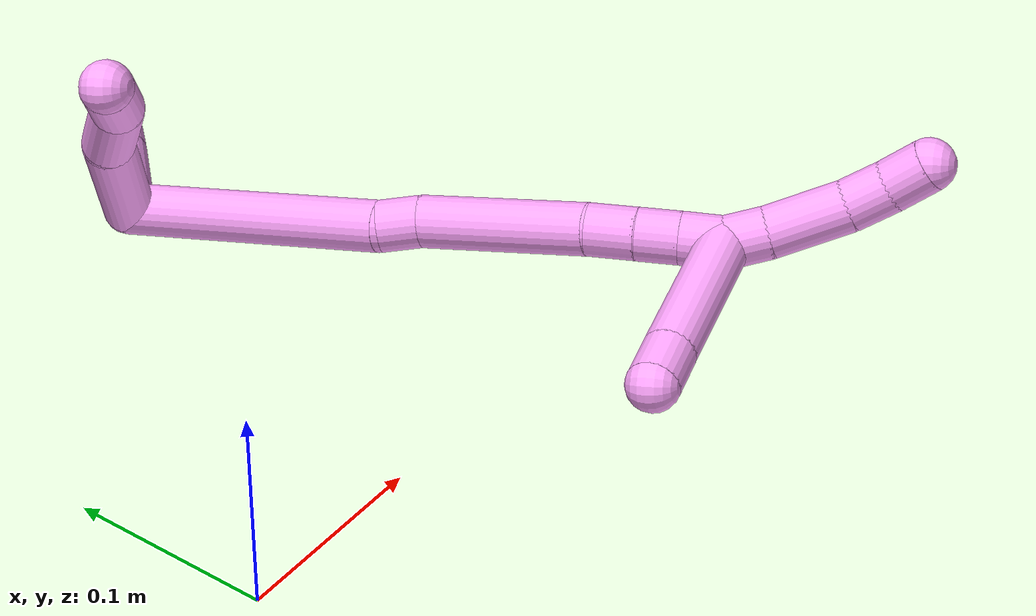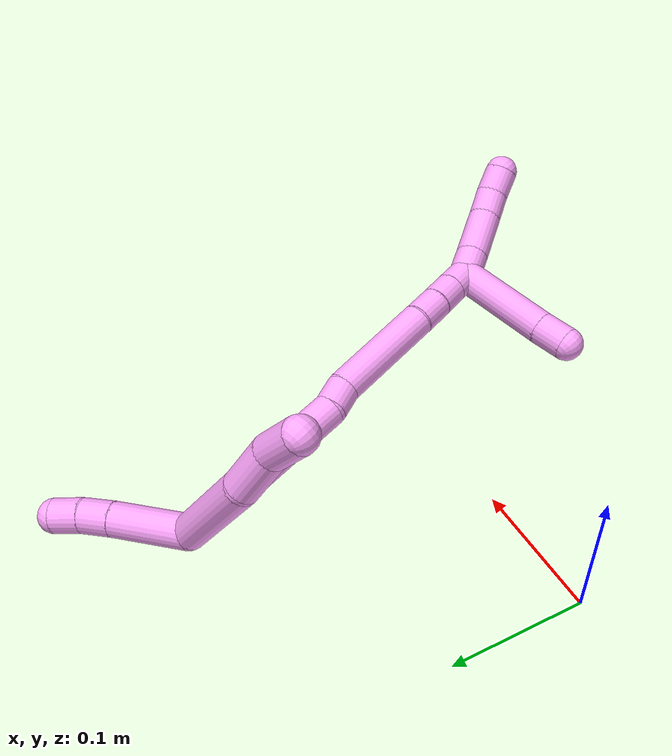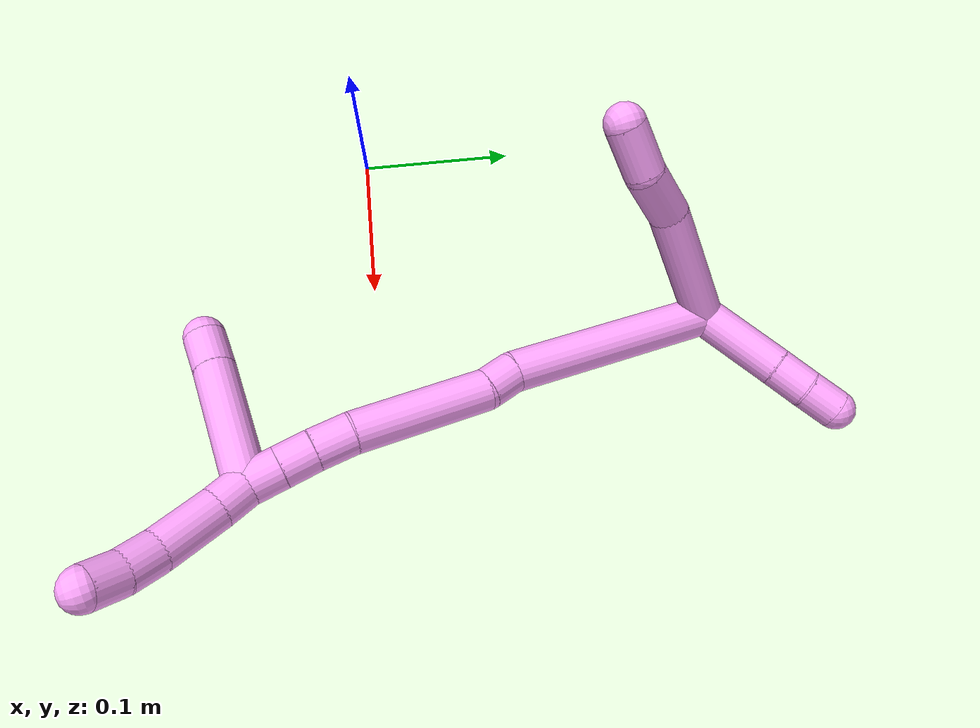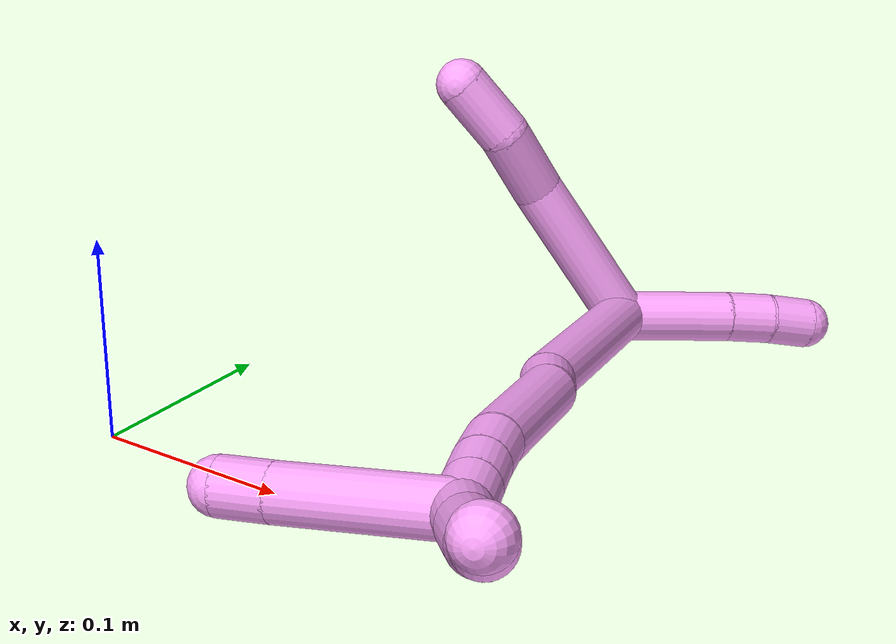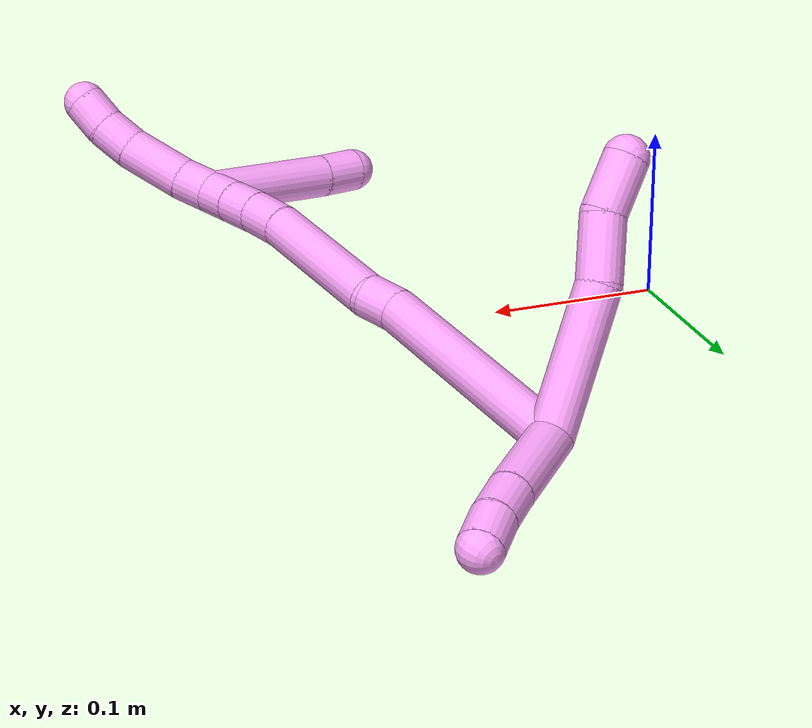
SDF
<sdf version="1.7">
 <world name="default">
  <model name="4">
   <static>0</static>
   <link name="4">
    <collision name="collision-cylinder-e_1_2_8">
     <pose>-0.004478 0.0389 -0.011441 -1.85685 -0.109999 0.146895</pose>
     <geometry><cylinder><radius>0.0125</radius><length>0.081588</length></cylinder></geometry>
     <surface>
      <friction><ode><mu>1.16</mu><mu2>1.16</mu2><slip1>0</slip1><slip2>0</slip2></ode></friction>
      <contact><ode><kp>1e+06</kp><kd>1</kd><max_vel>0</max_vel><min_depth>0.001</min_depth></ode></contact>
     </surface>
    </collision>
    <visual name="visual-cylinder-e_1_2_8">
     <pose>-0.004478 0.0389 -0.011441 -1.85685 -0.109999 0.146895</pose>
     <geometry><cylinder><radius>0.0125</radius><length>0.081588</length></cylinder></geometry>
     <material><ambient>1 0.65098 0.996078 1</ambient></material>
    </visual>
    <collision name="collision-cylinder-e_2_8_9">
     <pose>-0.012767 0.093305 -0.03163 -2.08446 -0.210848 0.358501</pose>
     <geometry><cylinder><radius>0.0125</radius><length>0.036412</length></cylinder></geometry>
     <surface>
      <friction><ode><mu>1.16</mu><mu2>1.16</mu2><slip1>0</slip1><slip2>0</slip2></ode></friction>
      <contact><ode><kp>1e+06</kp><kd>1</kd><max_vel>0</max_vel><min_depth>0.001</min_depth></ode></contact>
     </surface>
    </collision>
    <visual name="visual-cylinder-e_2_8_9">
     <pose>-0.012767 0.093305 -0.03163 -2.08446 -0.210848 0.358501</pose>
     <geometry><cylinder><radius>0.0125</radius><length>0.036412</length></cylinder></geometry>
     <material><ambient>1 0.65098 0.996078 1</ambient></material>
    </visual>
    <collision name="collision-cylinder-e_3_9_6">
     <pose>-0.016442 0.124209 -0.044721 -1.84565 0.008445 -0.011156</pose>
     <geometry><cylinder><radius>0.0125</radius><length>0.032</length></cylinder></geometry>
     <surface>
      <friction><ode><mu>1.16</mu><mu2>1.16</mu2><slip1>0</slip1><slip2>0</slip2></ode></friction>
      <contact><ode><kp>1e+06</kp><kd>1</kd><max_vel>0</max_vel><min_depth>0.001</min_depth></ode></contact>
     </surface>
    </collision>
    <visual name="visual-cylinder-e_3_9_6">
     <pose>-0.016442 0.124209 -0.044721 -1.84565 0.008445 -0.011156</pose>
     <geometry><cylinder><radius>0.0125</radius><length>0.032</length></cylinder></geometry>
     <material><ambient>1 0.65098 0.996078 1</ambient></material>
    </visual>
    <collision name="collision-cylinder-e_1_2_10">
     <pose>-0.018797 -0.016003 0.012612 0.903339 -0.745109 -0.374724</pose>
     <geometry><cylinder><radius>0.0125</radius><length>0.055443</length></cylinder></geometry>
     <surface>
      <friction><ode><mu>1.16</mu><mu2>1.16</mu2><slip1>0</slip1><slip2>0</slip2></ode></friction>
      <contact><ode><kp>1e+06</kp><kd>1</kd><max_vel>0</max_vel><min_depth>0.001</min_depth></ode></contact>
     </surface>
    </collision>
    <visual name="visual-cylinder-e_1_2_10">
     <pose>-0.018797 -0.016003 0.012612 0.903339 -0.745109 -0.374724</pose>
     <geometry><cylinder><radius>0.0125</radius><length>0.055443</length></cylinder></geometry>
     <material><ambient>1 0.65098 0.996078 1</ambient></material>
    </visual>
    <collision name="collision-cylinder-e_2_10_11">
     <pose>-0.044797 -0.038874 0.030624 0.904494 -0.689591 -0.345485</pose>
     <geometry><cylinder><radius>0.0125</radius><length>0.022647</length></cylinder></geometry>
     <surface>
      <friction><ode><mu>1.16</mu><mu2>1.16</mu2><slip1>0</slip1><slip2>0</slip2></ode></friction>
      <contact><ode><kp>1e+06</kp><kd>1</kd><max_vel>0</max_vel><min_depth>0.001</min_depth></ode></contact>
     </surface>
    </collision>
    <visual name="visual-cylinder-e_2_10_11">
     <pose>-0.044797 -0.038874 0.030624 0.904494 -0.689591 -0.345485</pose>
     <geometry><cylinder><radius>0.0125</radius><length>0.022647</length></cylinder></geometry>
     <material><ambient>1 0.65098 0.996078 1</ambient></material>
    </visual>
    <collision name="collision-cylinder-e_3_11_5">
     <pose>-0.057991 -0.052744 0.041949 0.868564 -0.578421 -0.274286</pose>
     <geometry><cylinder><radius>0.0125</radius><length>0.02191</length></cylinder></geometry>
     <surface>
      <friction><ode><mu>1.16</mu><mu2>1.16</mu2><slip1>0</slip1><slip2>0</slip2></ode></friction>
      <contact><ode><kp>1e+06</kp><kd>1</kd><max_vel>0</max_vel><min_depth>0.001</min_depth></ode></contact>
     </surface>
    </collision>
    <visual name="visual-cylinder-e_3_11_5">
     <pose>-0.057991 -0.052744 0.041949 0.868564 -0.578421 -0.274286</pose>
     <geometry><cylinder><radius>0.0125</radius><length>0.02191</length></cylinder></geometry>
     <material><ambient>1 0.65098 0.996078 1</ambient></material>
    </visual>
    <collision name="collision-cylinder-e_1_2_12">
     <pose>0.00208 0.003013 -0.066724 -3.09647 0.031125 -1.20753</pose>
     <geometry><cylinder><radius>0.0125</radius><length>0.133649</length></cylinder></geometry>
     <surface>
      <friction><ode><mu>1.16</mu><mu2>1.16</mu2><slip1>0</slip1><slip2>0</slip2></ode></friction>
      <contact><ode><kp>1e+06</kp><kd>1</kd><max_vel>0</max_vel><min_depth>0.001</min_depth></ode></contact>
     </surface>
    </collision>
    <visual name="visual-cylinder-e_1_2_12">
     <pose>0.00208 0.003013 -0.066724 -3.09647 0.031125 -1.20753</pose>
     <geometry><cylinder><radius>0.0125</radius><length>0.133649</length></cylinder></geometry>
     <material><ambient>1 0.65098 0.996078 1</ambient></material>
    </visual>
    <collision name="collision-cylinder-e_2_12_13">
     <pose>0.00204 0.004683 -0.143356 3.00689 -0.208846 -1.99787</pose>
     <geometry><cylinder><radius>0.0125</radius><length>0.020442</length></cylinder></geometry>
     <surface>
      <friction><ode><mu>1.16</mu><mu2>1.16</mu2><slip1>0</slip1><slip2>0</slip2></ode></friction>
      <contact><ode><kp>1e+06</kp><kd>1</kd><max_vel>0</max_vel><min_depth>0.001</min_depth></ode></contact>
     </surface>
    </collision>
    <visual name="visual-cylinder-e_2_12_13">
     <pose>0.00204 0.004683 -0.143356 3.00689 -0.208846 -1.99787</pose>
     <geometry><cylinder><radius>0.0125</radius><length>0.020442</length></cylinder></geometry>
     <material><ambient>1 0.65098 0.996078 1</ambient></material>
    </visual>
    <collision name="collision-cylinder-e_3_13_14">
     <pose>0.000264 0.004807 -0.194503 -3.10604 0.008309 -0.459171</pose>
     <geometry><cylinder><radius>0.0125</radius><length>0.082531</length></cylinder></geometry>
     <surface>
      <friction><ode><mu>1.16</mu><mu2>1.16</mu2><slip1>0</slip1><slip2>0</slip2></ode></friction>
      <contact><ode><kp>1e+06</kp><kd>1</kd><max_vel>0</max_vel><min_depth>0.001</min_depth></ode></contact>
     </surface>
    </collision>
    <visual name="visual-cylinder-e_3_13_14">
     <pose>0.000264 0.004807 -0.194503 -3.10604 0.008309 -0.459171</pose>
     <geometry><cylinder><radius>0.0125</radius><length>0.082531</length></cylinder></geometry>
     <material><ambient>1 0.65098 0.996078 1</ambient></material>
    </visual>
    <collision name="collision-cylinder-e_4_14_15">
     <pose>0.000835 0.005194 -0.247243 3.048 0.019728 0.415226</pose>
     <geometry><cylinder><radius>0.0125</radius><length>0.02311</length></cylinder></geometry>
     <surface>
      <friction><ode><mu>1.16</mu><mu2>1.16</mu2><slip1>0</slip1><slip2>0</slip2></ode></friction>
      <contact><ode><kp>1e+06</kp><kd>1</kd><max_vel>0</max_vel><min_depth>0.001</min_depth></ode></contact>
     </surface>
    </collision>
    <visual name="visual-cylinder-e_4_14_15">
     <pose>0.000835 0.005194 -0.247243 3.048 0.019728 0.415226</pose>
     <geometry><cylinder><radius>0.0125</radius><length>0.02311</length></cylinder></geometry>
     <material><ambient>1 0.65098 0.996078 1</ambient></material>
    </visual>
    <collision name="collision-cylinder-e_5_15_16">
     <pose>0.001115 0.002642 -0.268752 2.99548 0.005177 0.070714</pose>
     <geometry><cylinder><radius>0.0125</radius><length>0.02023</length></cylinder></geometry>
     <surface>
      <friction><ode><mu>1.16</mu><mu2>1.16</mu2><slip1>0</slip1><slip2>0</slip2></ode></friction>
      <contact><ode><kp>1e+06</kp><kd>1</kd><max_vel>0</max_vel><min_depth>0.001</min_depth></ode></contact>
     </surface>
    </collision>
    <visual name="visual-cylinder-e_5_15_16">
     <pose>0.001115 0.002642 -0.268752 2.99548 0.005177 0.070714</pose>
     <geometry><cylinder><radius>0.0125</radius><length>0.02023</length></cylinder></geometry>
     <material><ambient>1 0.65098 0.996078 1</ambient></material>
    </visual>
    <collision name="collision-cylinder-e_6_16_1">
     <pose>0.001375 -0.000291 -0.288669 2.99528 0.020764 0.281462</pose>
     <geometry><cylinder><radius>0.0125</radius><length>0.020039</length></cylinder></geometry>
     <surface>
      <friction><ode><mu>1.16</mu><mu2>1.16</mu2><slip1>0</slip1><slip2>0</slip2></ode></friction>
      <contact><ode><kp>1e+06</kp><kd>1</kd><max_vel>0</max_vel><min_depth>0.001</min_depth></ode></contact>
     </surface>
    </collision>
    <visual name="visual-cylinder-e_6_16_1">
     <pose>0.001375 -0.000291 -0.288669 2.99528 0.020764 0.281462</pose>
     <geometry><cylinder><radius>0.0125</radius><length>0.020039</length></cylinder></geometry>
     <material><ambient>1 0.65098 0.996078 1</ambient></material>
    </visual>
    <collision name="collision-cylinder-e_1_1_17">
     <pose>0.032881 0.020247 -0.295338 -1.42451 0.953078 -0.838604</pose>
     <geometry><cylinder><radius>0.0125</radius><length>0.076785</length></cylinder></geometry>
     <surface>
      <friction><ode><mu>1.16</mu><mu2>1.16</mu2><slip1>0</slip1><slip2>0</slip2></ode></friction>
      <contact><ode><kp>1e+06</kp><kd>1</kd><max_vel>0</max_vel><min_depth>0.001</min_depth></ode></contact>
     </surface>
    </collision>
    <visual name="visual-cylinder-e_1_1_17">
     <pose>0.032881 0.020247 -0.295338 -1.42451 0.953078 -0.838604</pose>
     <geometry><cylinder><radius>0.0125</radius><length>0.076785</length></cylinder></geometry>
     <material><ambient>1 0.65098 0.996078 1</ambient></material>
    </visual>
    <collision name="collision-cylinder-e_2_17_4">
     <pose>0.073439 0.049214 -0.291445 -1.47747 0.923576 -0.851144</pose>
     <geometry><cylinder><radius>0.0125</radius><length>0.023215</length></cylinder></geometry>
     <surface>
      <friction><ode><mu>1.16</mu><mu2>1.16</mu2><slip1>0</slip1><slip2>0</slip2></ode></friction>
      <contact><ode><kp>1e+06</kp><kd>1</kd><max_vel>0</max_vel><min_depth>0.001</min_depth></ode></contact>
     </surface>
    </collision>
    <visual name="visual-cylinder-e_2_17_4">
     <pose>0.073439 0.049214 -0.291445 -1.47747 0.923576 -0.851144</pose>
     <geometry><cylinder><radius>0.0125</radius><length>0.023215</length></cylinder></geometry>
     <material><ambient>1 0.65098 0.996078 1</ambient></material>
    </visual>
    <collision name="collision-cylinder-e_1_1_18">
     <pose>-0.001851 -0.003497 -0.307974 2.95793 -0.345049 -2.16925</pose>
     <geometry><cylinder><radius>0.0125</radius><length>0.020307</length></cylinder></geometry>
     <surface>
      <friction><ode><mu>1.16</mu><mu2>1.16</mu2><slip1>0</slip1><slip2>0</slip2></ode></friction>
      <contact><ode><kp>1e+06</kp><kd>1</kd><max_vel>0</max_vel><min_depth>0.001</min_depth></ode></contact>
     </surface>
    </collision>
    <visual name="visual-cylinder-e_1_1_18">
     <pose>-0.001851 -0.003497 -0.307974 2.95793 -0.345049 -2.16925</pose>
     <geometry><cylinder><radius>0.0125</radius><length>0.020307</length></cylinder></geometry>
     <material><ambient>1 0.65098 0.996078 1</ambient></material>
    </visual>
    <collision name="collision-cylinder-e_2_18_19">
     <pose>-0.012878 -0.006612 -0.334713 3.06276 -0.411448 -2.76804</pose>
     <geometry><cylinder><radius>0.0125</radius><length>0.037967</length></cylinder></geometry>
     <surface>
      <friction><ode><mu>1.16</mu><mu2>1.16</mu2><slip1>0</slip1><slip2>0</slip2></ode></friction>
      <contact><ode><kp>1e+06</kp><kd>1</kd><max_vel>0</max_vel><min_depth>0.001</min_depth></ode></contact>
     </surface>
    </collision>
    <visual name="visual-cylinder-e_2_18_19">
     <pose>-0.012878 -0.006612 -0.334713 3.06276 -0.411448 -2.76804</pose>
     <geometry><cylinder><radius>0.0125</radius><length>0.037967</length></cylinder></geometry>
     <material><ambient>1 0.65098 0.996078 1</ambient></material>
    </visual>
    <collision name="collision-cylinder-e_3_19_20">
     <pose>-0.025395 -0.007258 -0.361407 -3.06425 -0.483635 2.83039</pose>
     <geometry><cylinder><radius>0.0125</radius><length>0.021182</length></cylinder></geometry>
     <surface>
      <friction><ode><mu>1.16</mu><mu2>1.16</mu2><slip1>0</slip1><slip2>0</slip2></ode></friction>
      <contact><ode><kp>1e+06</kp><kd>1</kd><max_vel>0</max_vel><min_depth>0.001</min_depth></ode></contact>
     </surface>
    </collision>
    <visual name="visual-cylinder-e_3_19_20">
     <pose>-0.025395 -0.007258 -0.361407 -3.06425 -0.483635 2.83039</pose>
     <geometry><cylinder><radius>0.0125</radius><length>0.021182</length></cylinder></geometry>
     <material><ambient>1 0.65098 0.996078 1</ambient></material>
    </visual>
    <collision name="collision-cylinder-e_4_20_3">
     <pose>-0.034877 -0.004038 -0.379616 -2.86713 -0.459681 2.07519</pose>
     <geometry><cylinder><radius>0.0125</radius><length>0.020543</length></cylinder></geometry>
     <surface>
      <friction><ode><mu>1.16</mu><mu2>1.16</mu2><slip1>0</slip1><slip2>0</slip2></ode></friction>
      <contact><ode><kp>1e+06</kp><kd>1</kd><max_vel>0</max_vel><min_depth>0.001</min_depth></ode></contact>
     </surface>
    </collision>
    <visual name="visual-cylinder-e_4_20_3">
     <pose>-0.034877 -0.004038 -0.379616 -2.86713 -0.459681 2.07519</pose>
     <geometry><cylinder><radius>0.0125</radius><length>0.020543</length></cylinder></geometry>
     <material><ambient>1 0.65098 0.996078 1</ambient></material>
    </visual>
    <collision name="collision-sphere-3">
     <pose>-0.039434 -0.001543 -0.388477 0 -0 0</pose>
     <geometry><sphere><radius>0.0125</radius></sphere></geometry>
     <surface>
      <friction><ode><mu>1.16</mu><mu2>1.16</mu2><slip1>0</slip1><slip2>0</slip2></ode></friction>
      <contact><ode><kp>1e+06</kp><kd>1</kd><max_vel>0</max_vel><min_depth>0.001</min_depth></ode></contact>
     </surface>
    </collision>
    <visual name="visual-sphere-3">
     <pose>-0.039434 -0.001543 -0.388477 0 -0 0</pose>
     <geometry><sphere><radius>0.0125</radius></sphere></geometry>
     <material><ambient>1 0.65098 0.996078 1</ambient></material>
    </visual>
    <collision name="collision-sphere-20">
     <pose>-0.03032 -0.006533 -0.370755 0 -0 0</pose>
     <geometry><sphere><radius>0.0125</radius></sphere></geometry>
     <surface>
      <friction><ode><mu>1.16</mu><mu2>1.16</mu2><slip1>0</slip1><slip2>0</slip2></ode></friction>
      <contact><ode><kp>1e+06</kp><kd>1</kd><max_vel>0</max_vel><min_depth>0.001</min_depth></ode></contact>
     </surface>
    </collision>
    <visual name="visual-sphere-20">
     <pose>-0.03032 -0.006533 -0.370755 0 -0 0</pose>
     <geometry><sphere><radius>0.0125</radius></sphere></geometry>
     <material><ambient>1 0.65098 0.996078 1</ambient></material>
    </visual>
    <collision name="collision-sphere-19">
     <pose>-0.02047 -0.007982 -0.352058 0 -0 0</pose>
     <geometry><sphere><radius>0.0125</radius></sphere></geometry>
     <surface>
      <friction><ode><mu>1.16</mu><mu2>1.16</mu2><slip1>0</slip1><slip2>0</slip2></ode></friction>
      <contact><ode><kp>1e+06</kp><kd>1</kd><max_vel>0</max_vel><min_depth>0.001</min_depth></ode></contact>
     </surface>
    </collision>
    <visual name="visual-sphere-19">
     <pose>-0.02047 -0.007982 -0.352058 0 -0 0</pose>
     <geometry><sphere><radius>0.0125</radius></sphere></geometry>
     <material><ambient>1 0.65098 0.996078 1</ambient></material>
    </visual>
    <collision name="collision-sphere-11">
     <pose>-0.052002 -0.045741 0.036024 0 -0 0</pose>
     <geometry><sphere><radius>0.0125</radius></sphere></geometry>
     <surface>
      <friction><ode><mu>1.16</mu><mu2>1.16</mu2><slip1>0</slip1><slip2>0</slip2></ode></friction>
      <contact><ode><kp>1e+06</kp><kd>1</kd><max_vel>0</max_vel><min_depth>0.001</min_depth></ode></contact>
     </surface>
    </collision>
    <visual name="visual-sphere-11">
     <pose>-0.052002 -0.045741 0.036024 0 -0 0</pose>
     <geometry><sphere><radius>0.0125</radius></sphere></geometry>
     <material><ambient>1 0.65098 0.996078 1</ambient></material>
    </visual>
    <collision name="collision-sphere-10">
     <pose>-0.037593 -0.032006 0.025225 0 -0 0</pose>
     <geometry><sphere><radius>0.0125</radius></sphere></geometry>
     <surface>
      <friction><ode><mu>1.16</mu><mu2>1.16</mu2><slip1>0</slip1><slip2>0</slip2></ode></friction>
      <contact><ode><kp>1e+06</kp><kd>1</kd><max_vel>0</max_vel><min_depth>0.001</min_depth></ode></contact>
     </surface>
    </collision>
    <visual name="visual-sphere-10">
     <pose>-0.037593 -0.032006 0.025225 0 -0 0</pose>
     <geometry><sphere><radius>0.0125</radius></sphere></geometry>
     <material><ambient>1 0.65098 0.996078 1</ambient></material>
    </visual>
    <collision name="collision-sphere-6">
     <pose>-0.016307 0.139608 -0.049063 0 -0 0</pose>
     <geometry><sphere><radius>0.0125</radius></sphere></geometry>
     <surface>
      <friction><ode><mu>1.16</mu><mu2>1.16</mu2><slip1>0</slip1><slip2>0</slip2></ode></friction>
      <contact><ode><kp>1e+06</kp><kd>1</kd><max_vel>0</max_vel><min_depth>0.001</min_depth></ode></contact>
     </surface>
    </collision>
    <visual name="visual-sphere-6">
     <pose>-0.016307 0.139608 -0.049063 0 -0 0</pose>
     <geometry><sphere><radius>0.0125</radius></sphere></geometry>
     <material><ambient>1 0.65098 0.996078 1</ambient></material>
    </visual>
    <collision name="collision-sphere-9">
     <pose>-0.016577 0.10881 -0.040378 0 -0 0</pose>
     <geometry><sphere><radius>0.0125</radius></sphere></geometry>
     <surface>
      <friction><ode><mu>1.16</mu><mu2>1.16</mu2><slip1>0</slip1><slip2>0</slip2></ode></friction>
      <contact><ode><kp>1e+06</kp><kd>1</kd><max_vel>0</max_vel><min_depth>0.001</min_depth></ode></contact>
     </surface>
    </collision>
    <visual name="visual-sphere-9">
     <pose>-0.016577 0.10881 -0.040378 0 -0 0</pose>
     <geometry><sphere><radius>0.0125</radius></sphere></geometry>
     <material><ambient>1 0.65098 0.996078 1</ambient></material>
    </visual>
    <collision name="collision-sphere-2">
     <geometry><sphere><radius>0.0125</radius></sphere></geometry>
     <surface>
      <friction><ode><mu>1.16</mu><mu2>1.16</mu2><slip1>0</slip1><slip2>0</slip2></ode></friction>
      <contact><ode><kp>1e+06</kp><kd>1</kd><max_vel>0</max_vel><min_depth>0.001</min_depth></ode></contact>
     </surface>
    </collision>
    <visual name="visual-sphere-2">
     <geometry><sphere><radius>0.0125</radius></sphere></geometry>
     <material><ambient>1 0.65098 0.996078 1</ambient></material>
    </visual>
    <collision name="collision-sphere-8">
     <pose>-0.008956 0.077799 -0.022883 0 -0 0</pose>
     <geometry><sphere><radius>0.0125</radius></sphere></geometry>
     <surface>
      <friction><ode><mu>1.16</mu><mu2>1.16</mu2><slip1>0</slip1><slip2>0</slip2></ode></friction>
      <contact><ode><kp>1e+06</kp><kd>1</kd><max_vel>0</max_vel><min_depth>0.001</min_depth></ode></contact>
     </surface>
    </collision>
    <visual name="visual-sphere-8">
     <pose>-0.008956 0.077799 -0.022883 0 -0 0</pose>
     <geometry><sphere><radius>0.0125</radius></sphere></geometry>
     <material><ambient>1 0.65098 0.996078 1</ambient></material>
    </visual>
    <collision name="collision-sphere-5">
     <pose>-0.06398 -0.059747 0.047874 0 -0 0</pose>
     <geometry><sphere><radius>0.0125</radius></sphere></geometry>
     <surface>
      <friction><ode><mu>1.16</mu><mu2>1.16</mu2><slip1>0</slip1><slip2>0</slip2></ode></friction>
      <contact><ode><kp>1e+06</kp><kd>1</kd><max_vel>0</max_vel><min_depth>0.001</min_depth></ode></contact>
     </surface>
    </collision>
    <visual name="visual-sphere-5">
     <pose>-0.06398 -0.059747 0.047874 0 -0 0</pose>
     <geometry><sphere><radius>0.0125</radius></sphere></geometry>
     <material><ambient>1 0.65098 0.996078 1</ambient></material>
    </visual>
    <collision name="collision-sphere-12">
     <pose>0.004159 0.006026 -0.133448 0 -0 0</pose>
     <geometry><sphere><radius>0.0125</radius></sphere></geometry>
     <surface>
      <friction><ode><mu>1.16</mu><mu2>1.16</mu2><slip1>0</slip1><slip2>0</slip2></ode></friction>
      <contact><ode><kp>1e+06</kp><kd>1</kd><max_vel>0</max_vel><min_depth>0.001</min_depth></ode></contact>
     </surface>
    </collision>
    <visual name="visual-sphere-12">
     <pose>0.004159 0.006026 -0.133448 0 -0 0</pose>
     <geometry><sphere><radius>0.0125</radius></sphere></geometry>
     <material><ambient>1 0.65098 0.996078 1</ambient></material>
    </visual>
    <collision name="collision-sphere-13">
     <pose>-7.9e-05 0.00334 -0.153264 0 -0 0</pose>
     <geometry><sphere><radius>0.0125</radius></sphere></geometry>
     <surface>
      <friction><ode><mu>1.16</mu><mu2>1.16</mu2><slip1>0</slip1><slip2>0</slip2></ode></friction>
      <contact><ode><kp>1e+06</kp><kd>1</kd><max_vel>0</max_vel><min_depth>0.001</min_depth></ode></contact>
     </surface>
    </collision>
    <visual name="visual-sphere-13">
     <pose>-7.9e-05 0.00334 -0.153264 0 -0 0</pose>
     <geometry><sphere><radius>0.0125</radius></sphere></geometry>
     <material><ambient>1 0.65098 0.996078 1</ambient></material>
    </visual>
    <collision name="collision-sphere-14">
     <pose>0.000607 0.006274 -0.235741 0 -0 0</pose>
     <geometry><sphere><radius>0.0125</radius></sphere></geometry>
     <surface>
      <friction><ode><mu>1.16</mu><mu2>1.16</mu2><slip1>0</slip1><slip2>0</slip2></ode></friction>
      <contact><ode><kp>1e+06</kp><kd>1</kd><max_vel>0</max_vel><min_depth>0.001</min_depth></ode></contact>
     </surface>
    </collision>
    <visual name="visual-sphere-14">
     <pose>0.000607 0.006274 -0.235741 0 -0 0</pose>
     <geometry><sphere><radius>0.0125</radius></sphere></geometry>
     <material><ambient>1 0.65098 0.996078 1</ambient></material>
    </visual>
    <collision name="collision-sphere-15">
     <pose>0.001063 0.004114 -0.258745 0 -0 0</pose>
     <geometry><sphere><radius>0.0125</radius></sphere></geometry>
     <surface>
      <friction><ode><mu>1.16</mu><mu2>1.16</mu2><slip1>0</slip1><slip2>0</slip2></ode></friction>
      <contact><ode><kp>1e+06</kp><kd>1</kd><max_vel>0</max_vel><min_depth>0.001</min_depth></ode></contact>
     </surface>
    </collision>
    <visual name="visual-sphere-15">
     <pose>0.001063 0.004114 -0.258745 0 -0 0</pose>
     <geometry><sphere><radius>0.0125</radius></sphere></geometry>
     <material><ambient>1 0.65098 0.996078 1</ambient></material>
    </visual>
    <collision name="collision-sphere-16">
     <pose>0.001167 0.001169 -0.278759 0 -0 0</pose>
     <geometry><sphere><radius>0.0125</radius></sphere></geometry>
     <surface>
      <friction><ode><mu>1.16</mu><mu2>1.16</mu2><slip1>0</slip1><slip2>0</slip2></ode></friction>
      <contact><ode><kp>1e+06</kp><kd>1</kd><max_vel>0</max_vel><min_depth>0.001</min_depth></ode></contact>
     </surface>
    </collision>
    <visual name="visual-sphere-16">
     <pose>0.001167 0.001169 -0.278759 0 -0 0</pose>
     <geometry><sphere><radius>0.0125</radius></sphere></geometry>
     <material><ambient>1 0.65098 0.996078 1</ambient></material>
    </visual>
    <collision name="collision-sphere-1">
     <pose>0.001583 -0.001752 -0.298579 0 -0 0</pose>
     <geometry><sphere><radius>0.0125</radius></sphere></geometry>
     <surface>
      <friction><ode><mu>1.16</mu><mu2>1.16</mu2><slip1>0</slip1><slip2>0</slip2></ode></friction>
      <contact><ode><kp>1e+06</kp><kd>1</kd><max_vel>0</max_vel><min_depth>0.001</min_depth></ode></contact>
     </surface>
    </collision>
    <visual name="visual-sphere-1">
     <pose>0.001583 -0.001752 -0.298579 0 -0 0</pose>
     <geometry><sphere><radius>0.0125</radius></sphere></geometry>
     <material><ambient>1 0.65098 0.996078 1</ambient></material>
    </visual>
    <collision name="collision-sphere-18">
     <pose>-0.005285 -0.005242 -0.317368 0 -0 0</pose>
     <geometry><sphere><radius>0.0125</radius></sphere></geometry>
     <surface>
      <friction><ode><mu>1.16</mu><mu2>1.16</mu2><slip1>0</slip1><slip2>0</slip2></ode></friction>
      <contact><ode><kp>1e+06</kp><kd>1</kd><max_vel>0</max_vel><min_depth>0.001</min_depth></ode></contact>
     </surface>
    </collision>
    <visual name="visual-sphere-18">
     <pose>-0.005285 -0.005242 -0.317368 0 -0 0</pose>
     <geometry><sphere><radius>0.0125</radius></sphere></geometry>
     <material><ambient>1 0.65098 0.996078 1</ambient></material>
    </visual>
    <collision name="collision-sphere-17">
     <pose>0.064179 0.042246 -0.292097 0 -0 0</pose>
     <geometry><sphere><radius>0.0125</radius></sphere></geometry>
     <surface>
      <friction><ode><mu>1.16</mu><mu2>1.16</mu2><slip1>0</slip1><slip2>0</slip2></ode></friction>
      <contact><ode><kp>1e+06</kp><kd>1</kd><max_vel>0</max_vel><min_depth>0.001</min_depth></ode></contact>
     </surface>
    </collision>
    <visual name="visual-sphere-17">
     <pose>0.064179 0.042246 -0.292097 0 -0 0</pose>
     <geometry><sphere><radius>0.0125</radius></sphere></geometry>
     <material><ambient>1 0.65098 0.996078 1</ambient></material>
    </visual>
    <collision name="collision-sphere-4">
     <pose>0.082699 0.056182 -0.290792 0 -0 0</pose>
     <geometry><sphere><radius>0.0125</radius></sphere></geometry>
     <surface>
      <friction><ode><mu>1.16</mu><mu2>1.16</mu2><slip1>0</slip1><slip2>0</slip2></ode></friction>
      <contact><ode><kp>1e+06</kp><kd>1</kd><max_vel>0</max_vel><min_depth>0.001</min_depth></ode></contact>
     </surface>
    </collision>
    <visual name="visual-sphere-4">
     <pose>0.082699 0.056182 -0.290792 0 -0 0</pose>
     <geometry><sphere><radius>0.0125</radius></sphere></geometry>
     <material><ambient>1 0.65098 0.996078 1</ambient></material>
    </visual>
    <inertial>
     <pose>-0.002432 0.014432 -0.146533 0 -0 0</pose>
     <mass>0.75</mass>
     <inertia>
      <ixx>-3.2e-05</ixx>
      <ixy>0</ixy>
      <ixz>0</ixz>
      <iyy>-0.000302</iyy>
      <iyz>0</iyz>
      <izz>-0.000125</izz>
     </inertia>
    </inertial>
   </link>
   <pose>0.155368 0.208832 0.025959 1.77543 0.671144 -2.67823</pose>
  </model>
 </world>
</sdf>
